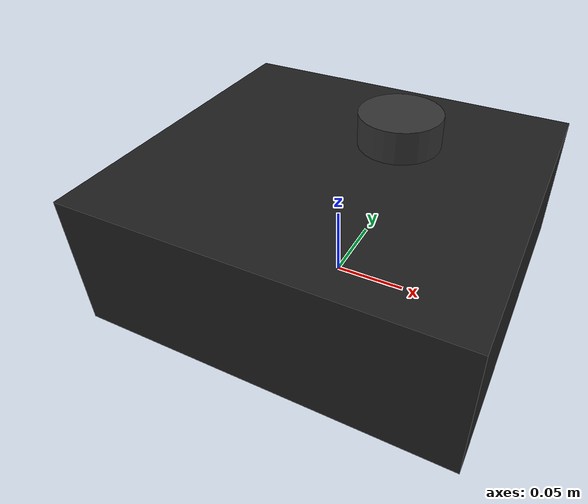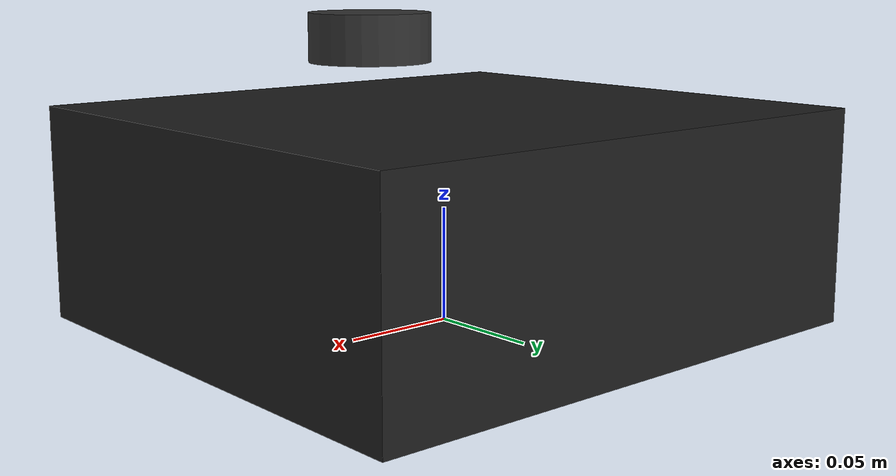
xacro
<?xml version="1.0"?>
<robot xmlns:xacro="http://www.ros.org/wiki/xacro" name="rower_ugv02">

  <xacro:arg name="lidar_x" default="0.040"/>
  <xacro:arg name="lidar_y" default="0.000"/>
  <xacro:arg name="lidar_z" default="0.1155"/>
  <xacro:arg name="lidar_yaw" default="-1.5707963267948966"/>

  <link name="base_link">
    <visual>
      <origin xyz="0 0 0.047" rpy="0 0 0"/>
      <geometry>
        <box size="0.252 0.230 0.094"/>
      </geometry>
      <material name="rower_body">
        <color rgba="0.12 0.12 0.12 1.0"/>
      </material>
    </visual>
    <collision>
      <origin xyz="0 0 0.047" rpy="0 0 0"/>
      <geometry>
        <box size="0.252 0.230 0.094"/>
      </geometry>
    </collision>
  </link>

  <link name="laser">
    <visual>
      <origin xyz="0 0 0.010" rpy="0 0 0"/>
      <geometry>
        <cylinder radius="0.025" length="0.020"/>
      </geometry>
      <material name="lidar_body">
        <color rgba="0.20 0.20 0.20 1.0"/>
      </material>
    </visual>
  </link>

  <joint name="base_link_to_laser" type="fixed">
    <parent link="base_link"/>
    <child link="laser"/>
    <origin xyz="$(arg lidar_x) $(arg lidar_y) $(arg lidar_z)" rpy="0 0 $(arg lidar_yaw)"/>
  </joint>
</robot>
